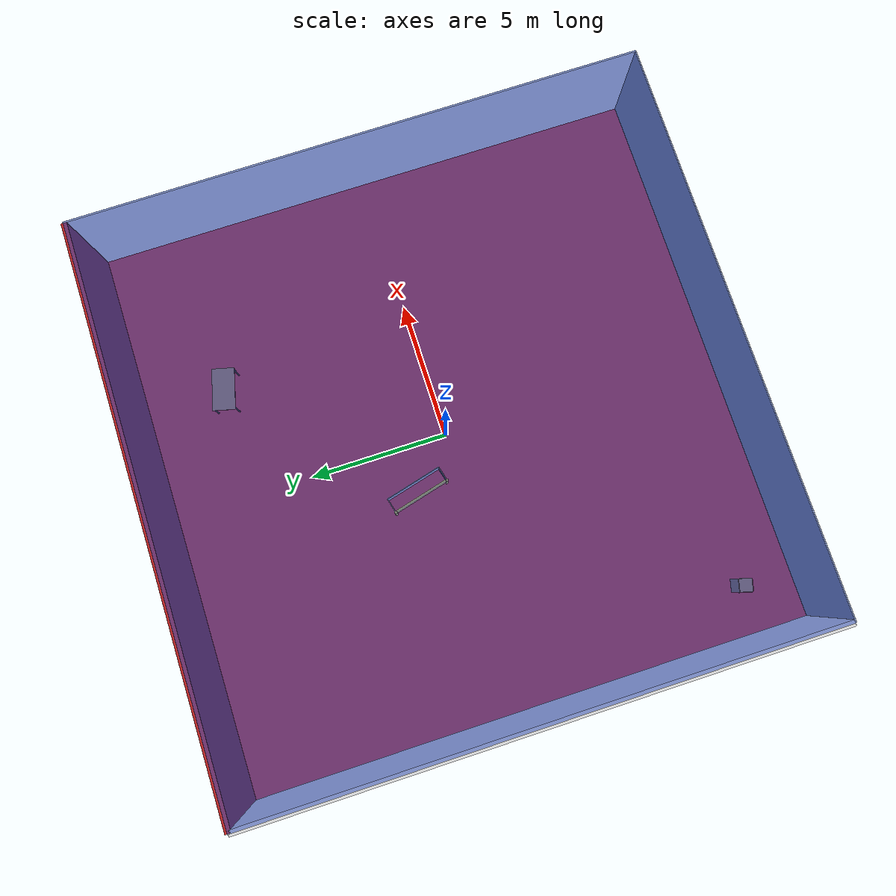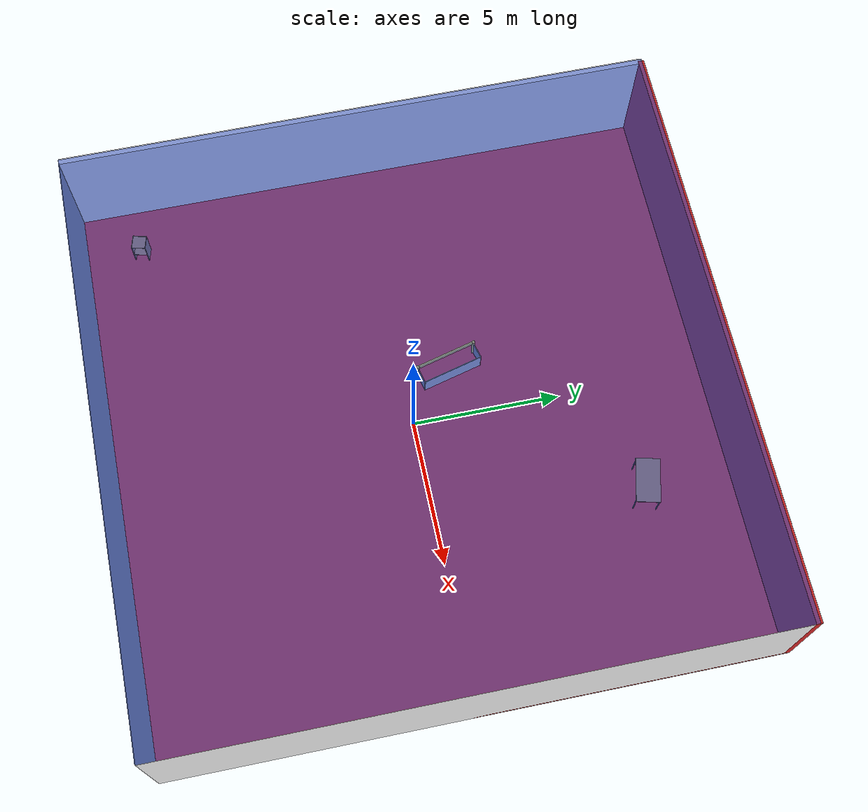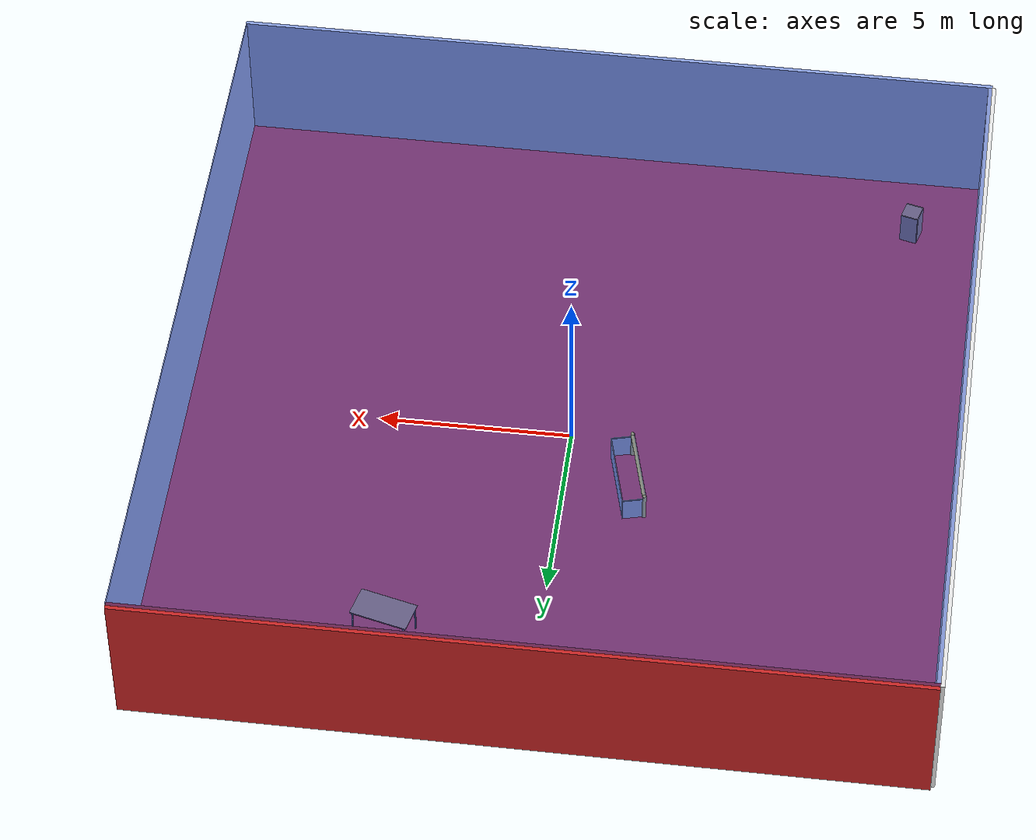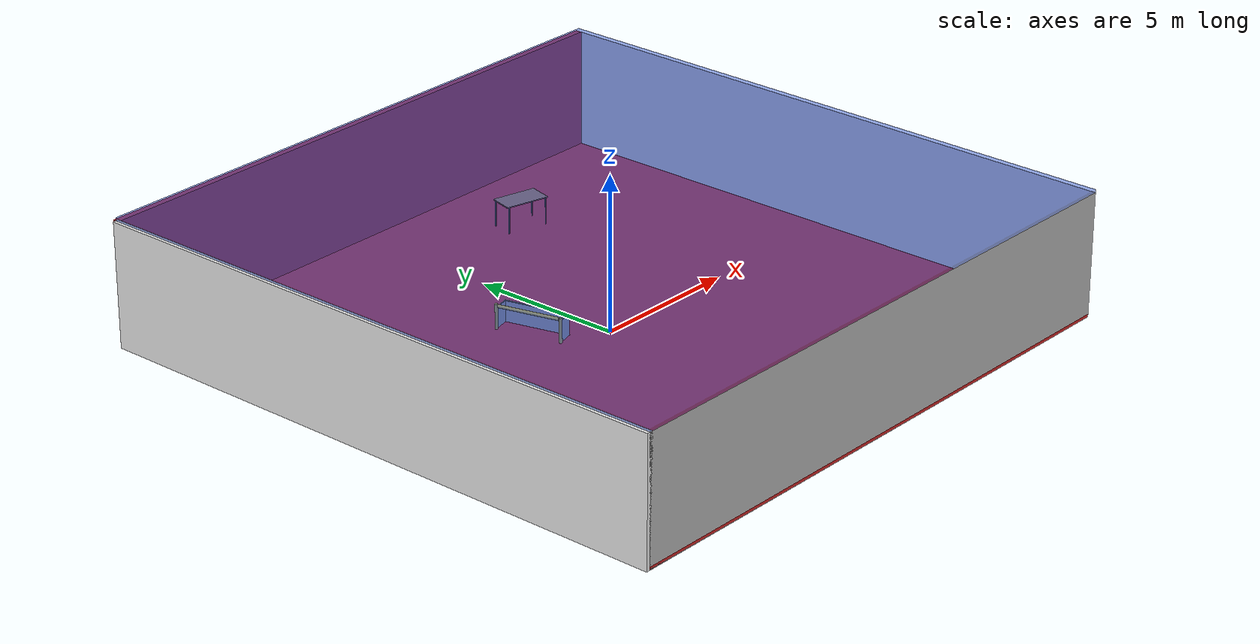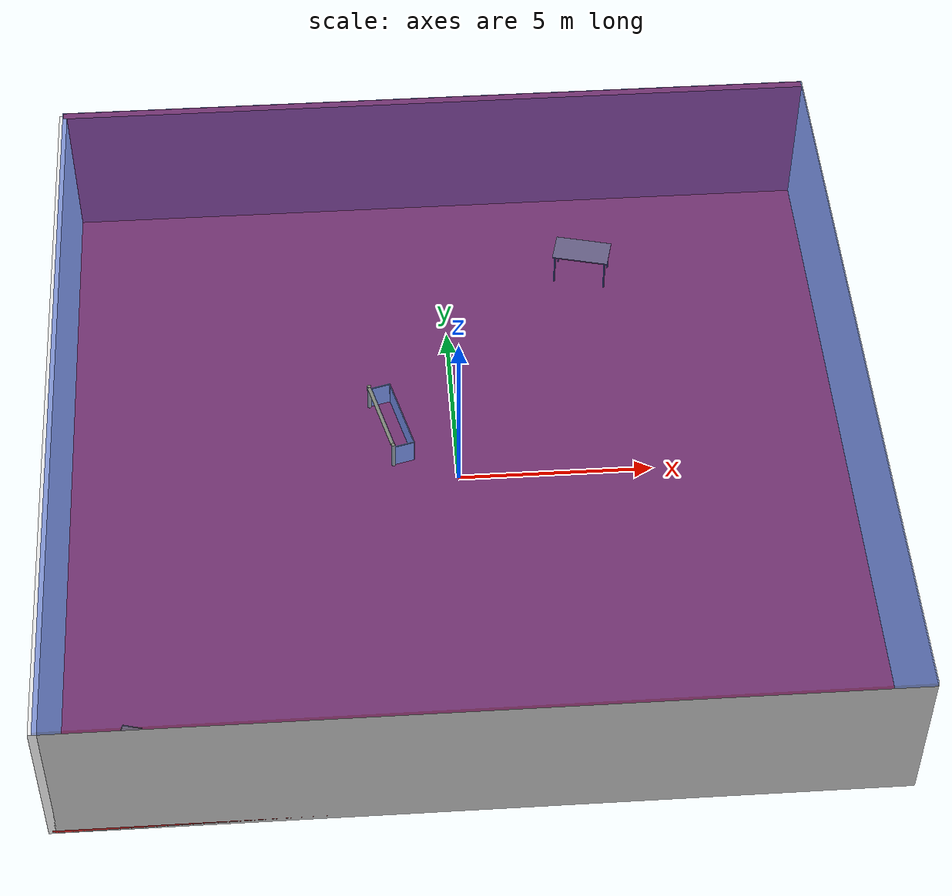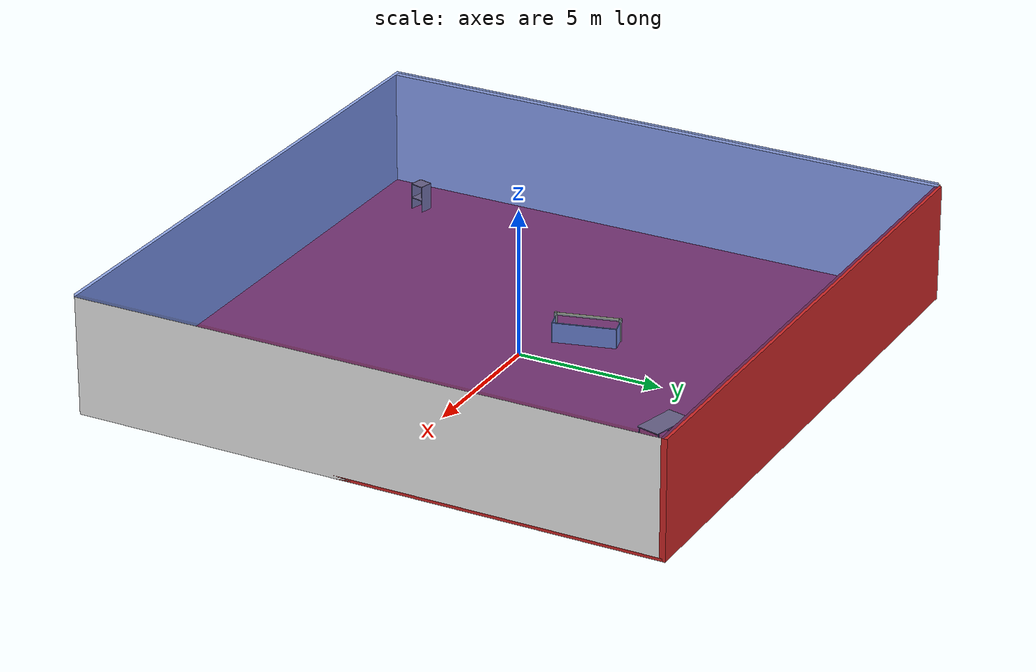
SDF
<sdf version="1.4">
 <world name="default">
  <physics type="ode">
   <max_step_size>0.001</max_step_size>
   <real_time_factor>1</real_time_factor>
   <real_time_update_rate>1000</real_time_update_rate>
   <gravity>0 0 -9.8</gravity>
  </physics>
  <scene><ambient>0.4 0.4 0.4 1</ambient><background>0.7 0.7 0.7 1</background><shadows>1</shadows></scene>
  <model name="Surrounding">
   <static>1</static>
   <link name="Ceiling">
    <collision name="Ceiling_Collision"><geometry><box><size>20 20 0.1</size></box></geometry></collision>
    <visual name="Ceiling_Visual">
     <geometry><box><size>20 20 0.1</size></box></geometry>
     <material>
      <script><uri>file://media/materials/scripts/gazebo.material</uri><name>Gazebo/BlueTransparent</name></script>
     </material>
    </visual>
    <pose>0 0 4.05 0 0 0</pose>
   </link>
   <link name="Wall_South">
    <collision name="Wall_South_Collision">
     <geometry><box><size>20 0 4</size></box></geometry>
     <pose>0 0 2 0 -0 0</pose>
    </collision>
    <visual name="Wall_South_Visual">
     <pose>0 0 2 0 -0 0</pose>
     <geometry><box><size>20 0 4</size></box></geometry>
     <material>
      <script><uri>file://media/materials/scripts/gazebo.material</uri><name>Gazebo/PioneerBody</name></script>
     </material>
    </visual>
    <velocity_decay><linear>0</linear><angular>0</angular></velocity_decay>
    <pose>0 -10 0 0 -0 0</pose>
   </link>
   <link name="Wall_East">
    <collision name="Wall_21_Collision">
     <geometry><box><size>20 0 4</size></box></geometry>
     <pose>0 0 2 0 -0 0</pose>
    </collision>
    <visual name="Wall_21_Visual">
     <pose>0 0 2 0 -0 0</pose>
     <geometry><box><size>20 0 4</size></box></geometry>
     <material>
      <script><uri>file://media/materials/scripts/gazebo.material</uri><name>Gazebo/White</name></script>
     </material>
    </visual>
    <velocity_decay><linear>0</linear><angular>0</angular></velocity_decay>
    <pose>10 0 0 0 -0 1.5708</pose>
   </link>
   <link name="Wall_North">
    <collision name="Wall_22_Collision">
     <geometry><box><size>20 0.2 4</size></box></geometry>
     <pose>0 0 2 0 -0 0</pose>
    </collision>
    <visual name="Wall_22_Visual">
     <pose>0 0 2 0 -0 0</pose>
     <geometry><box><size>20 0.2 4</size></box></geometry>
     <material>
      <script><uri>file://media/materials/scripts/gazebo.material</uri><name>Gazebo/RedGlow</name></script>
     </material>
    </visual>
    <velocity_decay><linear>0</linear><angular>0</angular></velocity_decay>
    <pose>0 10 0 0 -0 0</pose>
   </link>
   <link name="Wall_West">
    <collision name="Wall_23_Collision">
     <geometry><box><size>20 0.2 4</size></box></geometry>
     <pose>0 0 2 0 -0 0</pose>
    </collision>
    <visual name="Wall_23_Visual">
     <pose>0 0 2 0 -0 0</pose>
     <geometry><box><size>20 0.2 4</size></box></geometry>
     <material>
      <script><uri>file://media/materials/scripts/gazebo.material</uri><name>Gazebo/White</name></script>
     </material>
    </visual>
    <velocity_decay><linear>0</linear><angular>0</angular></velocity_decay>
    <pose>-10 0 0 0 0 -1.5708</pose>
   </link>
   <link name="Ground_link">
    <collision name="collision">
     <pose>0 0 .05 0 -0 0</pose>
     <geometry><box><size>20 20 0.1</size></box></geometry>
    </collision>
    <visual name="visual">
     <pose>0 0 .05 0 -0 0</pose>
     <geometry><box><size>20 20 0.1</size></box></geometry>
     <material>
      <script><uri>file://media/materials/scripts/gazebo.material</uri><name>Gazebo/Red</name></script>
     </material>
    </visual>
   </link>
   <static>1</static>
  </model>
  <spherical_coordinates>
   <surface_model>EARTH_WGS84</surface_model>
   <latitude_deg>0</latitude_deg>
   <longitude_deg>0</longitude_deg>
   <elevation>0</elevation>
   <heading_deg>0</heading_deg>
  </spherical_coordinates>
  <light name="lightball_0" type="diffuse">
   <diffuse>0.8 0.8 0.8 1</diffuse>
   <specular>0.2 0.2 0.2 1</specular>
   <attenuation>
    <range>100</range>
    <constant>0.7</constant>
    <linear>0.01</linear>
    <quadratic>0.001</quadratic>
   </attenuation>
   <direction>-0.5 0.1 -0.9</direction>
   <pose>-9.19821046847 7.10933203203 0.789009270967 0 0 0</pose>
  </light>
  <light name="lightball_1" type="diffuse">
   <diffuse>0.8 0.8 0.8 1</diffuse>
   <specular>0.2 0.2 0.2 1</specular>
   <attenuation>
    <range>100</range>
    <constant>0.7</constant>
    <linear>0.01</linear>
    <quadratic>0.001</quadratic>
   </attenuation>
   <direction>-0.5 0.1 -0.9</direction>
   <pose>4.52818422136 -4.35788707115 0.905798815933 0 0 0</pose>
  </light>
  <light name="lightball_2" type="diffuse">
   <diffuse>0.8 0.8 0.8 1</diffuse>
   <specular>0.2 0.2 0.2 1</specular>
   <attenuation>
    <range>100</range>
    <constant>0.7</constant>
    <linear>0.01</linear>
    <quadratic>0.001</quadratic>
   </attenuation>
   <direction>-0.5 0.1 -0.9</direction>
   <pose>8.48041509293 6.10014876054 0.566571072487 0 0 0</pose>
  </light>
  <light name="lightball_3" type="diffuse">
   <diffuse>0.8 0.8 0.8 1</diffuse>
   <specular>0.2 0.2 0.2 1</specular>
   <attenuation>
    <range>100</range>
    <constant>0.7</constant>
    <linear>0.01</linear>
    <quadratic>0.001</quadratic>
   </attenuation>
   <direction>-0.5 0.1 -0.9</direction>
   <pose>-6.79963400382 5.58980146002 2.36074330665 0 0 0</pose>
  </light>
  <light name="lightball_4" type="diffuse">
   <diffuse>0.8 0.8 0.8 1</diffuse>
   <specular>0.2 0.2 0.2 1</specular>
   <attenuation>
    <range>100</range>
    <constant>0.7</constant>
    <linear>0.01</linear>
    <quadratic>0.001</quadratic>
   </attenuation>
   <direction>-0.5 0.1 -0.9</direction>
   <pose>-0.00899657765307 -4.87237952445 1.06461137965 0 0 0</pose>
  </light>
  <light name="lightball_5" type="diffuse">
   <diffuse>0.8 0.8 0.8 1</diffuse>
   <specular>0.2 0.2 0.2 1</specular>
   <attenuation>
    <range>100</range>
    <constant>0.7</constant>
    <linear>0.01</linear>
    <quadratic>0.001</quadratic>
   </attenuation>
   <direction>-0.5 0.1 -0.9</direction>
   <pose>6.50930574275 1.3713206218 2.02046705171 0 0 0</pose>
  </light>
  <light name="lightball_6" type="diffuse">
   <diffuse>0.8 0.8 0.8 1</diffuse>
   <specular>0.2 0.2 0.2 1</specular>
   <attenuation>
    <range>100</range>
    <constant>0.7</constant>
    <linear>0.01</linear>
    <quadratic>0.001</quadratic>
   </attenuation>
   <direction>-0.5 0.1 -0.9</direction>
   <pose>9.15563996224 -9.92885216597 1.50759006795 0 0 0</pose>
  </light>
  <light name="lightball_7" type="diffuse">
   <diffuse>0.8 0.8 0.8 1</diffuse>
   <specular>0.2 0.2 0.2 1</specular>
   <attenuation>
    <range>100</range>
    <constant>0.7</constant>
    <linear>0.01</linear>
    <quadratic>0.001</quadratic>
   </attenuation>
   <direction>-0.5 0.1 -0.9</direction>
   <pose>-7.40512313669 -7.57910928826 3.05530814218 0 0 0</pose>
  </light>
  <light name="lightball_8" type="diffuse">
   <diffuse>0.8 0.8 0.8 1</diffuse>
   <specular>0.2 0.2 0.2 1</specular>
   <attenuation>
    <range>100</range>
    <constant>0.7</constant>
    <linear>0.01</linear>
    <quadratic>0.001</quadratic>
   </attenuation>
   <direction>-0.5 0.1 -0.9</direction>
   <pose>-8.4375929326 3.42390819062 1.93226516644 0 0 0</pose>
  </light>
  <light name="lightball_9" type="diffuse">
   <diffuse>0.8 0.8 0.8 1</diffuse>
   <specular>0.2 0.2 0.2 1</specular>
   <attenuation>
    <range>100</range>
    <constant>0.7</constant>
    <linear>0.01</linear>
    <quadratic>0.001</quadratic>
   </attenuation>
   <direction>-0.5 0.1 -0.9</direction>
   <pose>1.04843906715 -4.78339512343 1.98732033535 0 0 0</pose>
  </light>
  <light name="lightball_10" type="diffuse">
   <diffuse>0.8 0.8 0.8 1</diffuse>
   <specular>0.2 0.2 0.2 1</specular>
   <attenuation>
    <range>100</range>
    <constant>0.7</constant>
    <linear>0.01</linear>
    <quadratic>0.001</quadratic>
   </attenuation>
   <direction>-0.5 0.1 -0.9</direction>
   <pose>-8.26534521545 -0.577330704942 3.66002567742 0 0 0</pose>
  </light>
  <light name="lightball_11" type="diffuse">
   <diffuse>0.8 0.8 0.8 1</diffuse>
   <specular>0.2 0.2 0.2 1</specular>
   <attenuation>
    <range>100</range>
    <constant>0.7</constant>
    <linear>0.01</linear>
    <quadratic>0.001</quadratic>
   </attenuation>
   <direction>-0.5 0.1 -0.9</direction>
   <pose>4.03160202032 -1.69881746361 1.73411191593 0 0 0</pose>
  </light>
  <light name="lightball_12" type="diffuse">
   <diffuse>0.8 0.8 0.8 1</diffuse>
   <specular>0.2 0.2 0.2 1</specular>
   <attenuation>
    <range>100</range>
    <constant>0.7</constant>
    <linear>0.01</linear>
    <quadratic>0.001</quadratic>
   </attenuation>
   <direction>-0.5 0.1 -0.9</direction>
   <pose>-4.9213286019 -8.74015467174 3.54106543303 0 0 0</pose>
  </light>
  <include><uri>model://cabinet</uri><pose>-8.18622201793 -8.09182727982 0 0 0 2.89023393383</pose></include>
  <include>
   <uri>model://robocup_3Dsim_goal</uri>
   <pose>-1.90878784549 1.48797576667 0 0 0 0.253907757365</pose>
  </include>
  <include><uri>model://table</uri><pose>3.82236788358 6.98447496869 0 0 0 2.89768405976</pose></include>
 </world>
</sdf>

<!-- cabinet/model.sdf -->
<sdf version="1.5">
  <model name="cabinet">
    <static>true</static>
    <link name="cabinet_bottom_plate">
      <inertial>
        <pose>0 0 -1 0 0 0</pose>
        <inertia>
          <ixx>2.050000</ixx>
          <ixy>0</ixy>
          <ixz>0</ixz>
          <iyy>2.050000</iyy>
          <iyz>0</iyz>
          <izz>2.050000</izz>
        </inertia>
        <mass>25.000000</mass>
      </inertial>
      <collision name="cabinet_bottom_plate_geom">
        <pose>0 0 0.010000 0 0 0</pose>
        <geometry>
          <box>
            <size>0.450000 0.450000 0.020000</size>
          </box>
        </geometry>
      </collision>
      <visual name="cabinet_bottom_plate_geom_visual">
        <pose>0 0 0.010000 0 0 0</pose>
        <geometry>
          <box>
            <size>0.450000 0.450000 0.020000</size>
          </box>
        </geometry>
        <material>
          <script>
            <uri>model://media/materials/scripts/gazebo.material</uri>
            <name>Gazebo/Wood</name>
          </script>
        </material>
      </visual>
      <collision name="cabinet_bottom_plate_geom_cabinet_back_plate">
        <pose>0.235000 0 0.510000 0 0 0</pose>
        <geometry>
          <box>
            <size>0.020000 0.450000 1.020000</size>
          </box>
        </geometry>
      </collision>
      <visual name="cabinet_bottom_plate_geom_cabinet_back_plate_visual">
        <pose>0.235000 0 0.510000 0 0 0</pose>
        <geometry>
          <box>
            <size>0.020000 0.450000 1.020000</size>
          </box>
        </geometry>
        <material>
          <script>
            <uri>model://media/materials/scripts/gazebo.material</uri>
            <name>Gazebo/Wood</name>
          </script>
        </material>
      </visual>
      <collision name="cabinet_bottom_plate_geom_cabinet_left_plate">
        <pose>0 0.235000 0.510000 0 0 0</pose>
        <geometry>
          <box>
            <size>0.450000 0.020000 1.020000</size>
          </box>
        </geometry>
      </collision>
      <visual name="cabinet_bottom_plate_geom_cabinet_left_plate_visual">
        <pose>0 0.235000 0.510000 0 0 0</pose>
        <geometry>
          <box>
            <size>0.450000 0.020000 1.020000</size>
          </box>
        </geometry>
        <material>
          <script>
            <uri>model://media/materials/scripts/gazebo.material</uri>
            <name>Gazebo/Wood</name>
          </script>
        </material>
      </visual>
      <collision name="cabinet_bottom_plate_geom_cabinet_middle_plate">
        <pose>0 0 0.510000 0 0 0</pose>
        <geometry>
          <box>
            <size>0.450000 0.450000 0.020000</size>
          </box>
        </geometry>
      </collision>
      <visual name="cabinet_bottom_plate_geom_cabinet_middle_plate_visual">
        <pose>0 0 0.510000 0 0 0</pose>
        <geometry>
          <box>
            <size>0.450000 0.450000 0.020000</size>
          </box>
        </geometry>
        <material>
          <script>
            <uri>model://media/materials/scripts/gazebo.material</uri>
            <name>Gazebo/Wood</name>
          </script>
        </material>
      </visual>
      <collision name="cabinet_bottom_plate_geom_cabinet_right_plate">
        <pose>0 -0.235000 0.510000 0 0 0</pose>
        <geometry>
          <box>
            <size>0.450000 0.020000 1.020000</size>
          </box>
        </geometry>
      </collision>
      <visual name="cabinet_bottom_plate_geom_cabinet_right_plate_visual">
        <pose>0 -0.235000 0.510000 0 0 0</pose>
        <geometry>
          <box>
            <size>0.450000 0.020000 1.020000</size>
          </box>
        </geometry>
        <material>
          <script>
            <uri>model://media/materials/scripts/gazebo.material</uri>
            <name>Gazebo/Wood</name>
          </script>
        </material>
      </visual>
      <collision name="cabinet_bottom_plate_geom_cabinet_top_plate">
        <pose>0 0 1.010000 0 0 0</pose>
        <geometry>
          <box>
            <size>0.450000 0.450000 0.020000</size>
          </box>
        </geometry>
      </collision>
      <visual name="cabinet_bottom_plate_geom_cabinet_top_plate_visual">
        <pose>0 0 1.010000 0 0 0</pose>
        <geometry>
          <box>
            <size>0.450000 0.450000 0.020000</size>
          </box>
        </geometry>
        <material>
          <script>
            <uri>model://media/materials/scripts/gazebo.material</uri>
            <name>Gazebo/Wood</name>
          </script>
        </material>
      </visual>
    </link>
  </model>
</sdf>

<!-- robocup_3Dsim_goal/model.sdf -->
<sdf version="1.5">
  <model name="robocup_3d_goal">
    <static>true</static>
    <link name="left_post">
      <pose>0 1.05 0.45 0 0 0</pose>
      <collision name="collision">
        <geometry>
          <cylinder>
            <radius>0.05</radius>
            <length>0.9</length>
          </cylinder>
        </geometry>
      </collision>
      <visual name="visual">
        <geometry>
          <cylinder>
            <radius>0.05</radius>
            <length>0.9</length>
          </cylinder>
        </geometry>
        <material>
          <script>
            <uri>file://media/materials/scripts/gazebo.material</uri>
            <name>Gazebo/ZincYellow</name>
          </script>
        </material>
      </visual>
    </link>
    <link name="left_support_horiz_lower">
      <pose>0.30 1.05 0.01 0 0 0</pose>
      <collision name="collision">
        <geometry>
          <box>
            <size>0.50 0.02 0.02</size>
          </box>
        </geometry>
      </collision>
      <visual name="visual">
        <geometry>
          <box>
            <size>0.50 0.02 0.02</size>
          </box>
        </geometry>
        <material>
          <script>
            <uri>file://media/materials/scripts/gazebo.material</uri>
            <name>Gazebo/White</name>
          </script>
        </material>
      </visual>
    </link>
    <link name="left_support_horiz_upper">
      <pose>0.30 1.05 0.79 0 0 0</pose>
      <collision name="collision">
        <geometry>
          <box>
            <size>0.50 0.02 0.02</size>
          </box>
        </geometry>
      </collision>
      <visual name="visual">
        <geometry>
          <box>
            <size>0.50 0.02 0.02</size>
          </box>
        </geometry>
        <material>
          <script>
            <uri>file://media/materials/scripts/gazebo.material</uri>
            <name>Gazebo/White</name>
          </script>
        </material>
      </visual>
    </link>
    <link name="left_support_vertical">
      <pose>0.56 1.05 0.4 0 1.5708 0</pose>
      <collision name="collision">
        <geometry>
          <box>
            <size>0.80 0.02 0.02</size>
          </box>
        </geometry>
      </collision>
      <visual name="visual">
        <geometry>
          <box>
            <size>0.80 0.02 0.02</size>
          </box>
        </geometry>
        <material>
          <script>
            <uri>file://media/materials/scripts/gazebo.material</uri>
            <name>Gazebo/White</name>
          </script>
        </material>
      </visual>
    </link>
    <link name="right_support_horiz_lower">
      <pose>0.30 -1.05 0.01 0 0 0</pose>
      <collision name="collision">
        <geometry>
          <box>
            <size>0.50 0.02 0.02</size>
          </box>
        </geometry>
      </collision>
      <visual name="visual">
        <geometry>
          <box>
            <size>0.50 0.02 0.02</size>
          </box>
        </geometry>
        <material>
          <script>
            <uri>file://media/materials/scripts/gazebo.material</uri>
            <name>Gazebo/White</name>
          </script>
        </material>
      </visual>
    </link>
    <link name="right_support_horiz_upper">
      <pose>0.30 -1.05 0.79 0 0 0</pose>
      <collision name="collision">
        <geometry>
          <box>
            <size>0.50 0.02 0.02</size>
          </box>
        </geometry>
      </collision>
      <visual name="visual">
        <geometry>
          <box>
            <size>0.50 0.02 0.02</size>
          </box>
        </geometry>
        <material>
          <script>
            <uri>file://media/materials/scripts/gazebo.material</uri>
            <name>Gazebo/White</name>
          </script>
        </material>
      </visual>
    </link>
    <link name="right_support_vertical">
      <pose>0.56 -1.05 0.4 0 1.5708 0</pose>
      <collision name="collision">
        <geometry>
          <box>
            <size>0.80 0.02 0.02</size>
          </box>
        </geometry>
      </collision>
      <visual name="visual">
        <geometry>
          <box>
            <size>0.80 0.02 0.02</size>
          </box>
        </geometry>
        <material>
          <script>
            <uri>file://media/materials/scripts/gazebo.material</uri>
            <name>Gazebo/White</name>
          </script>
        </material>
      </visual>
    </link>
    <link name="center_support_horiz_lower">
      <pose>0.56 0 0.01 0 1.5708 0</pose>
      <collision name="collision">
        <geometry>
          <box>
            <size>0.02 2.08 0.02</size>
          </box>
        </geometry>
      </collision>
      <visual name="visual">
        <geometry>
          <box>
            <size>0.02 2.08 0.02</size>
          </box>
        </geometry>
        <material>
          <script>
            <uri>file://media/materials/scripts/gazebo.material</uri>
            <name>Gazebo/White</name>
          </script>
        </material>
      </visual>
    </link>
    <link name="center_support_horiz_upper">
      <pose>0.56 0 0.79 0 1.5708 0</pose>
      <collision name="collision">
        <geometry>
          <box>
            <size>0.02 2.08 0.02</size>
          </box>
        </geometry>
      </collision>
      <visual name="visual">
        <geometry>
          <box>
            <size>0.02 2.08 0.02</size>
          </box>
        </geometry>
        <material>
          <script>
            <uri>file://media/materials/scripts/gazebo.material</uri>
            <name>Gazebo/White</name>
          </script>
        </material>
      </visual>
    </link>
    <link name="right_post">
      <pose>0 -1.05 0.45 0 0 0</pose>
      <collision name="collision">
        <geometry>
          <cylinder>
            <radius>0.05</radius>
            <length>0.9</length>
          </cylinder>
        </geometry>
      </collision>
      <visual name="visual">
        <geometry>
          <cylinder>
            <radius>0.05</radius>
            <length>0.9</length>
          </cylinder>
        </geometry>
        <material>
          <script>
            <uri>file://media/materials/scripts/gazebo.material</uri>
            <name>Gazebo/ZincYellow</name>
          </script>
        </material>
      </visual>
    </link>
    <link name="crossbar">
      <pose>0 0 0.85 1.57 1.57 0</pose>
      <collision name="collision">
        <geometry>
          <cylinder>
            <radius>0.05</radius>
            <length>2.0</length>
          </cylinder>
        </geometry>
      </collision>
      <visual name="visual">
        <geometry>
          <cylinder>
            <radius>0.05</radius>
            <length>2.0</length>
          </cylinder>
        </geometry>
        <material>
          <script>
            <uri>file://media/materials/scripts/gazebo.material</uri>
            <name>Gazebo/ZincYellow</name>
          </script>
        </material>
      </visual>
    </link>
    <link name="center_net">
      <pose>0.56 0 0.40 0 0 0</pose>
      <collision name="collision">
        <geometry>
          <box>
            <size>0.01 2.1 0.80</size>
          </box>
        </geometry>
      </collision>
      <visual name="visual">
        <geometry>
          <box>
            <size>0.01 2.1 0.80</size>
          </box>
        </geometry>
        <material>
          <script>
            <uri>model://../model_source/models/robocup09_spl_field/materials/scripts/</uri>
            <uri>model://../model_source/models/robocup09_spl_field/materials/textures/</uri>
            <name>RoboCup/Net</name>
          </script>
        </material>
      </visual>
    </link>
    <link name="left_net">
      <pose>0.30 1.05 0.40 0 0 0</pose>
      <collision name="collision">
        <geometry>
          <box>
            <size>0.50 0.01 0.76</size>
          </box>
        </geometry>
      </collision>
      <visual name="visual">
        <geometry>
          <box>
            <size>0.50 0.01 0.76</size>
          </box>
        </geometry>
        <material>
          <script>
            <uri>model://../model_source/models/robocup09_spl_field/materials/scripts/</uri>
            <uri>model://../model_source/models/robocup09_spl_field/materials/textures/</uri>
            <name>RoboCup/Net</name>
          </script>
        </material>
      </visual>
    </link>
    <link name="right_net">
      <pose>0.30 -1.05 0.40 0 0 0</pose>
      <collision name="collision">
        <geometry>
          <box>
            <size>0.50 0.01 0.76</size>
          </box>
        </geometry>
      </collision>
      <visual name="visual">
        <geometry>
          <box>
            <size>0.50 0.01 0.76</size>
          </box>
        </geometry>
        <material>
          <script>
            <uri>model://../model_source/models/robocup09_spl_field/materials/scripts/</uri>
            <uri>model://../model_source/models/robocup09_spl_field/materials/textures/</uri>
            <name>RoboCup/Net</name>
          </script>
        </material>
      </visual>
    </link>
  </model>
</sdf>

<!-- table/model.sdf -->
<sdf version="1.5">
  <model name="table">
    <static>true</static>
    <link name="link">
      <collision name="surface">
        <pose>0 0 1.0 0 0 0</pose>
        <geometry>
          <box>
            <size>1.5 0.8 0.03</size>
          </box>
        </geometry>
        <surface>
          <friction>
            <ode>
              <mu>0.6</mu>
              <mu2>0.6</mu2>
            </ode>
          </friction>
        </surface>
      </collision>
      <visual name="visual1">
        <pose>0 0 1.0 0 0 0</pose>
        <geometry>
          <box>
            <size>1.5 0.8 0.03</size>
          </box>
        </geometry>
        <material>
          <script>
            <uri>model://media/materials/scripts/gazebo.material</uri>
            <name>Gazebo/Wood</name>
          </script>
        </material>
      </visual>
      <collision name="front_left_leg">
        <pose>0.68 0.38 0.5 0 0 0</pose>
        <geometry>
          <cylinder>
            <radius>0.02</radius>
            <length>1.0</length>
          </cylinder>
        </geometry>
      </collision>
      <visual name="front_left_leg">
        <pose>0.68 0.38 0.5 0 0 0</pose>
        <geometry>
          <cylinder>
            <radius>0.02</radius>
            <length>1.0</length>
          </cylinder>
        </geometry>
        <material>
          <script>
            <uri>model://media/materials/scripts/gazebo.material</uri>
            <name>Gazebo/Grey</name>
          </script>
        </material>
      </visual>
      <collision name="front_right_leg">
        <pose>0.68 -0.38 0.5 0 0 0</pose>
        <geometry>
          <cylinder>
            <radius>0.02</radius>
            <length>1.0</length>
          </cylinder>
        </geometry>
      </collision>
      <visual name="front_right_leg">
        <pose>0.68 -0.38 0.5 0 0 0</pose>
        <geometry>
          <cylinder>
            <radius>0.02</radius>
            <length>1.0</length>
          </cylinder>
        </geometry>
        <material>
          <script>
            <uri>model://media/materials/scripts/gazebo.material</uri>
            <name>Gazebo/Grey</name>
          </script>
        </material>
      </visual>
      <collision name="back_right_leg">
        <pose>-0.68 -0.38 0.5 0 0 0</pose>
        <geometry>
          <cylinder>
            <radius>0.02</radius>
            <length>1.0</length>
          </cylinder>
        </geometry>
      </collision>
      <visual name="back_right_leg">
        <pose>-0.68 -0.38 0.5 0 0 0</pose>
        <geometry>
          <cylinder>
            <radius>0.02</radius>
            <length>1.0</length>
          </cylinder>
        </geometry>
        <material>
          <script>
            <uri>model://media/materials/scripts/gazebo.material</uri>
            <name>Gazebo/Grey</name>
          </script>
        </material>
      </visual>
      <collision name="back_left_leg">
        <pose>-0.68 0.38 0.5 0 0 0</pose>
        <geometry>
          <cylinder>
            <radius>0.02</radius>
            <length>1.0</length>
          </cylinder>
        </geometry>
      </collision>
      <visual name="back_left_leg">
        <pose>-0.68 0.38 0.5 0 0 0</pose>
        <geometry>
          <cylinder>
            <radius>0.02</radius>
            <length>1.0</length>
          </cylinder>
        </geometry>
        <material>
          <script>
            <uri>model://media/materials/scripts/gazebo.material</uri>
            <name>Gazebo/Grey</name>
          </script>
        </material>
      </visual>
    </link>
  </model>
</sdf>
